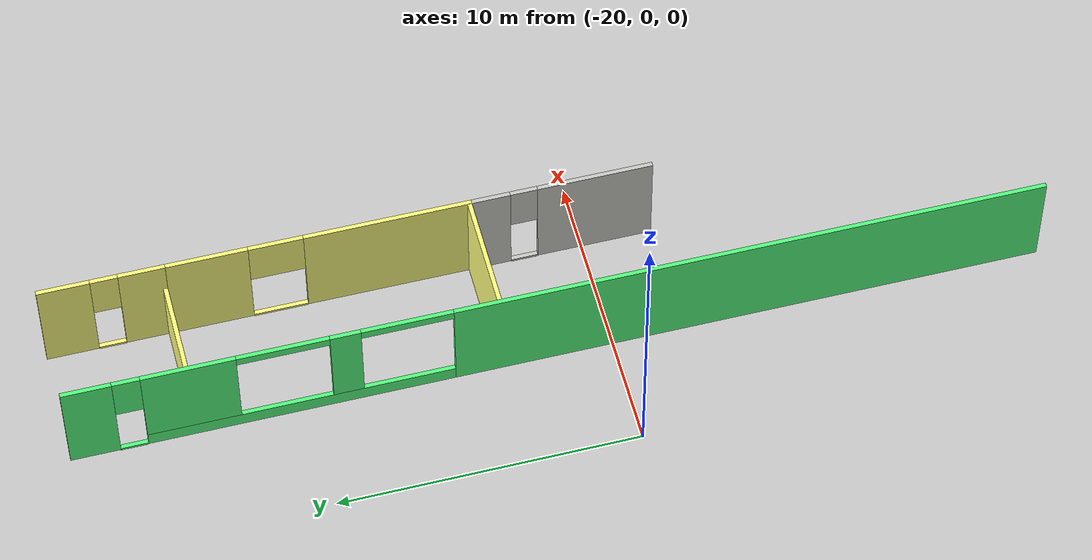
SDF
<sdf version="1.6">
 <world name="default">
  <model name="ground_plane">
   <static>1</static>
   <link name="link">
    <collision name="collision">
     <geometry><plane><normal>0 0 1</normal><size>100 100</size></plane></geometry>
     <surface><friction><ode><mu>100</mu><mu2>50</mu2></ode></friction></surface>
    </collision>
    <visual name="visual">
     <cast_shadows>0</cast_shadows>
     <geometry><plane><normal>0 0 1</normal><size>100 100</size></plane></geometry>
     <material>
      <script><uri>file://media/materials/scripts/gazebo.material</uri><name>Gazebo/Grey</name></script>
     </material>
    </visual>
   </link>
  </model>
  <model name="myfloorplan">
   <link name="Wall_36">
    <pose>-11 14 0 0 -0 1.5708</pose>
    <visual name="Wall_36_Visual_0">
     <pose>-1.30968 0 1.8 0 -0 0</pose>
     <geometry><box><size>1.53063 0.15 3.6</size></box></geometry>
     <material>
      <script><uri>file://media/materials/scripts/gazebo.material</uri><name>Gazebo/Grey</name></script>
      <ambient>1 1 0.498039 1</ambient>
     </material>
    </visual>
    <visual name="Wall_36_Visual_1">
     <pose>1.21531 0 1.8 0 -0 0</pose>
     <geometry><box><size>1.71937 0.15 3.6</size></box></geometry>
     <material>
      <script><uri>file://media/materials/scripts/gazebo.material</uri><name>Gazebo/Grey</name></script>
      <ambient>1 1 0.498039 1</ambient>
     </material>
    </visual>
    <visual name="Wall_36_Visual_2">
     <pose>-0.09437 0 0 0 -0 0</pose>
     <geometry><box><size>0.9 0.15 0.1</size></box></geometry>
     <material>
      <script><uri>file://media/materials/scripts/gazebo.material</uri><name>Gazebo/Grey</name></script>
      <ambient>1 1 0.498039 1</ambient>
     </material>
    </visual>
    <visual name="Wall_36_Visual_3">
     <pose>-0.09437 0 2.8 0 -0 0</pose>
     <geometry><box><size>0.9 0.15 1.6</size></box></geometry>
     <material>
      <script><uri>file://media/materials/scripts/gazebo.material</uri><name>Gazebo/Grey</name></script>
      <ambient>1 1 0.498039 1</ambient>
     </material>
    </visual>
    <collision name="Wall_36_Collision_0">
     <pose>-1.30968 0 1.8 0 -0 0</pose>
     <geometry><box><size>1.53063 0.15 3.6</size></box></geometry>
     <surface>
      <friction>
       <ode><mu>1</mu><mu2>1</mu2><fdir1>0 0 0</fdir1><slip1>0</slip1><slip2>0</slip2></ode>
       <torsional>
        <coefficient>1</coefficient>
        <patch_radius>0</patch_radius>
        <surface_radius>0</surface_radius>
        <use_patch_radius>1</use_patch_radius>
        <ode><slip>0</slip></ode>
       </torsional>
      </friction>
      <bounce><restitution_coefficient>0</restitution_coefficient><threshold>1e+06</threshold></bounce>
      <contact>
       <collide_without_contact>0</collide_without_contact>
       <collide_without_contact_bitmask>1</collide_without_contact_bitmask>
       <collide_bitmask>1</collide_bitmask>
       <ode>
        <soft_cfm>0</soft_cfm>
        <soft_erp>0.2</soft_erp>
        <kp>1e+13</kp>
        <kd>1</kd>
        <max_vel>0.01</max_vel>
        <min_depth>0</min_depth>
       </ode>
       <bullet>
        <split_impulse>1</split_impulse>
        <split_impulse_penetration_threshold>-0.01</split_impulse_penetration_threshold>
        <soft_cfm>0</soft_cfm>
        <soft_erp>0.2</soft_erp>
        <kp>1e+13</kp>
        <kd>1</kd>
       </bullet>
      </contact>
     </surface>
    </collision>
    <collision name="Wall_36_Collision_1">
     <pose>1.21531 0 1.8 0 -0 0</pose>
     <geometry><box><size>1.71937 0.15 3.6</size></box></geometry>
     <surface>
      <friction>
       <ode><mu>1</mu><mu2>1</mu2><fdir1>0 0 0</fdir1><slip1>0</slip1><slip2>0</slip2></ode>
       <torsional>
        <coefficient>1</coefficient>
        <patch_radius>0</patch_radius>
        <surface_radius>0</surface_radius>
        <use_patch_radius>1</use_patch_radius>
        <ode><slip>0</slip></ode>
       </torsional>
      </friction>
      <bounce><restitution_coefficient>0</restitution_coefficient><threshold>1e+06</threshold></bounce>
      <contact>
       <collide_without_contact>0</collide_without_contact>
       <collide_without_contact_bitmask>1</collide_without_contact_bitmask>
       <collide_bitmask>1</collide_bitmask>
       <ode>
        <soft_cfm>0</soft_cfm>
        <soft_erp>0.2</soft_erp>
        <kp>1e+13</kp>
        <kd>1</kd>
        <max_vel>0.01</max_vel>
        <min_depth>0</min_depth>
       </ode>
       <bullet>
        <split_impulse>1</split_impulse>
        <split_impulse_penetration_threshold>-0.01</split_impulse_penetration_threshold>
        <soft_cfm>0</soft_cfm>
        <soft_erp>0.2</soft_erp>
        <kp>1e+13</kp>
        <kd>1</kd>
       </bullet>
      </contact>
     </surface>
    </collision>
    <collision name="Wall_36_Collision_2">
     <pose>-0.09437 0 0 0 -0 0</pose>
     <geometry><box><size>0.9 0.15 0.1</size></box></geometry>
     <surface>
      <friction>
       <ode><mu>1</mu><mu2>1</mu2><fdir1>0 0 0</fdir1><slip1>0</slip1><slip2>0</slip2></ode>
       <torsional>
        <coefficient>1</coefficient>
        <patch_radius>0</patch_radius>
        <surface_radius>0</surface_radius>
        <use_patch_radius>1</use_patch_radius>
        <ode><slip>0</slip></ode>
       </torsional>
      </friction>
      <bounce><restitution_coefficient>0</restitution_coefficient><threshold>1e+06</threshold></bounce>
      <contact>
       <collide_without_contact>0</collide_without_contact>
       <collide_without_contact_bitmask>1</collide_without_contact_bitmask>
       <collide_bitmask>1</collide_bitmask>
       <ode>
        <soft_cfm>0</soft_cfm>
        <soft_erp>0.2</soft_erp>
        <kp>1e+13</kp>
        <kd>1</kd>
        <max_vel>0.01</max_vel>
        <min_depth>0</min_depth>
       </ode>
       <bullet>
        <split_impulse>1</split_impulse>
        <split_impulse_penetration_threshold>-0.01</split_impulse_penetration_threshold>
        <soft_cfm>0</soft_cfm>
        <soft_erp>0.2</soft_erp>
        <kp>1e+13</kp>
        <kd>1</kd>
       </bullet>
      </contact>
     </surface>
    </collision>
    <collision name="Wall_36_Collision_3">
     <pose>-0.09437 0 2.8 0 -0 0</pose>
     <geometry><box><size>0.9 0.15 1.6</size></box></geometry>
     <surface>
      <friction>
       <ode><mu>1</mu><mu2>1</mu2><fdir1>0 0 0</fdir1><slip1>0</slip1><slip2>0</slip2></ode>
       <torsional>
        <coefficient>1</coefficient>
        <patch_radius>0</patch_radius>
        <surface_radius>0</surface_radius>
        <use_patch_radius>1</use_patch_radius>
        <ode><slip>0</slip></ode>
       </torsional>
      </friction>
      <bounce><restitution_coefficient>0</restitution_coefficient><threshold>1e+06</threshold></bounce>
      <contact>
       <collide_without_contact>0</collide_without_contact>
       <collide_without_contact_bitmask>1</collide_without_contact_bitmask>
       <collide_bitmask>1</collide_bitmask>
       <ode>
        <soft_cfm>0</soft_cfm>
        <soft_erp>0.2</soft_erp>
        <kp>1e+13</kp>
        <kd>1</kd>
        <max_vel>0.01</max_vel>
        <min_depth>0</min_depth>
       </ode>
       <bullet>
        <split_impulse>1</split_impulse>
        <split_impulse_penetration_threshold>-0.01</split_impulse_penetration_threshold>
        <soft_cfm>0</soft_cfm>
        <soft_erp>0.2</soft_erp>
        <kp>1e+13</kp>
        <kd>1</kd>
       </bullet>
      </contact>
     </surface>
    </collision>
   </link>
   <link name="Wall_38">
    <pose>-11 7 0 0 0 -1.5708</pose>
    <visual name="Wall_38_Visual_0">
     <pose>-3.66056 0 1.8 0 -0 0</pose>
     <geometry><box><size>2.82888 0.15 3.6</size></box></geometry>
     <material>
      <script><uri>file://media/materials/scripts/gazebo.material</uri><name>Gazebo/Grey</name></script>
      <ambient>1 1 0.498039 1</ambient>
     </material>
    </visual>
    <visual name="Wall_38_Visual_1">
     <pose>2.31444 0 1.8 0 -0 0</pose>
     <geometry><box><size>5.52112 0.15 3.6</size></box></geometry>
     <material>
      <script><uri>file://media/materials/scripts/gazebo.material</uri><name>Gazebo/Grey</name></script>
      <ambient>1 1 0.498039 1</ambient>
     </material>
    </visual>
    <visual name="Wall_38_Visual_2">
     <pose>-1.34612 0 0 0 -0 0</pose>
     <geometry><box><size>1.8 0.15 0.1</size></box></geometry>
     <material>
      <script><uri>file://media/materials/scripts/gazebo.material</uri><name>Gazebo/Grey</name></script>
      <ambient>1 1 0.498039 1</ambient>
     </material>
    </visual>
    <visual name="Wall_38_Visual_3">
     <pose>-1.34612 0 2.8 0 -0 0</pose>
     <geometry><box><size>1.8 0.15 1.6</size></box></geometry>
     <material>
      <script><uri>file://media/materials/scripts/gazebo.material</uri><name>Gazebo/Grey</name></script>
      <ambient>1 1 0.498039 1</ambient>
     </material>
    </visual>
    <collision name="Wall_38_Collision_0">
     <pose>-3.66056 0 1.8 0 -0 0</pose>
     <geometry><box><size>2.82888 0.15 3.6</size></box></geometry>
     <surface>
      <friction>
       <ode><mu>1</mu><mu2>1</mu2><fdir1>0 0 0</fdir1><slip1>0</slip1><slip2>0</slip2></ode>
       <torsional>
        <coefficient>1</coefficient>
        <patch_radius>0</patch_radius>
        <surface_radius>0</surface_radius>
        <use_patch_radius>1</use_patch_radius>
        <ode><slip>0</slip></ode>
       </torsional>
      </friction>
      <bounce><restitution_coefficient>0</restitution_coefficient><threshold>1e+06</threshold></bounce>
      <contact>
       <collide_without_contact>0</collide_without_contact>
       <collide_without_contact_bitmask>1</collide_without_contact_bitmask>
       <collide_bitmask>1</collide_bitmask>
       <ode>
        <soft_cfm>0</soft_cfm>
        <soft_erp>0.2</soft_erp>
        <kp>1e+13</kp>
        <kd>1</kd>
        <max_vel>0.01</max_vel>
        <min_depth>0</min_depth>
       </ode>
       <bullet>
        <split_impulse>1</split_impulse>
        <split_impulse_penetration_threshold>-0.01</split_impulse_penetration_threshold>
        <soft_cfm>0</soft_cfm>
        <soft_erp>0.2</soft_erp>
        <kp>1e+13</kp>
        <kd>1</kd>
       </bullet>
      </contact>
     </surface>
    </collision>
    <collision name="Wall_38_Collision_1">
     <pose>2.31444 0 1.8 0 -0 0</pose>
     <geometry><box><size>5.52112 0.15 3.6</size></box></geometry>
     <surface>
      <friction>
       <ode><mu>1</mu><mu2>1</mu2><fdir1>0 0 0</fdir1><slip1>0</slip1><slip2>0</slip2></ode>
       <torsional>
        <coefficient>1</coefficient>
        <patch_radius>0</patch_radius>
        <surface_radius>0</surface_radius>
        <use_patch_radius>1</use_patch_radius>
        <ode><slip>0</slip></ode>
       </torsional>
      </friction>
      <bounce><restitution_coefficient>0</restitution_coefficient><threshold>1e+06</threshold></bounce>
      <contact>
       <collide_without_contact>0</collide_without_contact>
       <collide_without_contact_bitmask>1</collide_without_contact_bitmask>
       <collide_bitmask>1</collide_bitmask>
       <ode>
        <soft_cfm>0</soft_cfm>
        <soft_erp>0.2</soft_erp>
        <kp>1e+13</kp>
        <kd>1</kd>
        <max_vel>0.01</max_vel>
        <min_depth>0</min_depth>
       </ode>
       <bullet>
        <split_impulse>1</split_impulse>
        <split_impulse_penetration_threshold>-0.01</split_impulse_penetration_threshold>
        <soft_cfm>0</soft_cfm>
        <soft_erp>0.2</soft_erp>
        <kp>1e+13</kp>
        <kd>1</kd>
       </bullet>
      </contact>
     </surface>
    </collision>
    <collision name="Wall_38_Collision_2">
     <pose>-1.34612 0 0 0 -0 0</pose>
     <geometry><box><size>1.8 0.15 0.1</size></box></geometry>
     <surface>
      <friction>
       <ode><mu>1</mu><mu2>1</mu2><fdir1>0 0 0</fdir1><slip1>0</slip1><slip2>0</slip2></ode>
       <torsional>
        <coefficient>1</coefficient>
        <patch_radius>0</patch_radius>
        <surface_radius>0</surface_radius>
        <use_patch_radius>1</use_patch_radius>
        <ode><slip>0</slip></ode>
       </torsional>
      </friction>
      <bounce><restitution_coefficient>0</restitution_coefficient><threshold>1e+06</threshold></bounce>
      <contact>
       <collide_without_contact>0</collide_without_contact>
       <collide_without_contact_bitmask>1</collide_without_contact_bitmask>
       <collide_bitmask>1</collide_bitmask>
       <ode>
        <soft_cfm>0</soft_cfm>
        <soft_erp>0.2</soft_erp>
        <kp>1e+13</kp>
        <kd>1</kd>
        <max_vel>0.01</max_vel>
        <min_depth>0</min_depth>
       </ode>
       <bullet>
        <split_impulse>1</split_impulse>
        <split_impulse_penetration_threshold>-0.01</split_impulse_penetration_threshold>
        <soft_cfm>0</soft_cfm>
        <soft_erp>0.2</soft_erp>
        <kp>1e+13</kp>
        <kd>1</kd>
       </bullet>
      </contact>
     </surface>
    </collision>
    <collision name="Wall_38_Collision_3">
     <pose>-1.34612 0 2.8 0 -0 0</pose>
     <geometry><box><size>1.8 0.15 1.6</size></box></geometry>
     <surface>
      <friction>
       <ode><mu>1</mu><mu2>1</mu2><fdir1>0 0 0</fdir1><slip1>0</slip1><slip2>0</slip2></ode>
       <torsional>
        <coefficient>1</coefficient>
        <patch_radius>0</patch_radius>
        <surface_radius>0</surface_radius>
        <use_patch_radius>1</use_patch_radius>
        <ode><slip>0</slip></ode>
       </torsional>
      </friction>
      <bounce><restitution_coefficient>0</restitution_coefficient><threshold>1e+06</threshold></bounce>
      <contact>
       <collide_without_contact>0</collide_without_contact>
       <collide_without_contact_bitmask>1</collide_without_contact_bitmask>
       <collide_bitmask>1</collide_bitmask>
       <ode>
        <soft_cfm>0</soft_cfm>
        <soft_erp>0.2</soft_erp>
        <kp>1e+13</kp>
        <kd>1</kd>
        <max_vel>0.01</max_vel>
        <min_depth>0</min_depth>
       </ode>
       <bullet>
        <split_impulse>1</split_impulse>
        <split_impulse_penetration_threshold>-0.01</split_impulse_penetration_threshold>
        <soft_cfm>0</soft_cfm>
        <soft_erp>0.2</soft_erp>
        <kp>1e+13</kp>
        <kd>1</kd>
       </bullet>
      </contact>
     </surface>
    </collision>
   </link>
   <link name="Wall_39">
    <pose>-13 2 0 0 -0 3.14159</pose>
    <visual name="Wall_39_Visual">
     <pose>0 0 1.8 0 -0 0</pose>
     <geometry><box><size>4.15 0.15 3.6</size></box></geometry>
     <material>
      <script><uri>file://media/materials/scripts/gazebo.material</uri><name>Gazebo/Grey</name></script>
      <ambient>1 1 0.498039 1</ambient>
     </material>
    </visual>
    <collision name="Wall_39_Collision">
     <pose>0 0 1.8 0 -0 0</pose>
     <geometry><box><size>4.15 0.15 3.6</size></box></geometry>
     <surface>
      <friction>
       <ode><mu>1</mu><mu2>1</mu2><fdir1>0 0 0</fdir1><slip1>0</slip1><slip2>0</slip2></ode>
       <torsional>
        <coefficient>1</coefficient>
        <patch_radius>0</patch_radius>
        <surface_radius>0</surface_radius>
        <use_patch_radius>1</use_patch_radius>
        <ode><slip>0</slip></ode>
       </torsional>
      </friction>
      <bounce><restitution_coefficient>0</restitution_coefficient><threshold>1e+06</threshold></bounce>
      <contact>
       <collide_without_contact>0</collide_without_contact>
       <collide_without_contact_bitmask>1</collide_without_contact_bitmask>
       <collide_bitmask>1</collide_bitmask>
       <ode>
        <soft_cfm>0</soft_cfm>
        <soft_erp>0.2</soft_erp>
        <kp>1e+13</kp>
        <kd>1</kd>
        <max_vel>0.01</max_vel>
        <min_depth>0</min_depth>
       </ode>
       <bullet>
        <split_impulse>1</split_impulse>
        <split_impulse_penetration_threshold>-0.01</split_impulse_penetration_threshold>
        <soft_cfm>0</soft_cfm>
        <soft_erp>0.2</soft_erp>
        <kp>1e+13</kp>
        <kd>1</kd>
       </bullet>
      </contact>
     </surface>
    </collision>
   </link>
   <link name="Wall_41">
    <pose>-11 -0.999999 0 0 0 -1.5708</pose>
    <visual name="Wall_41_Visual_0">
     <pose>-2.36537 0 1.8 0 -0 0</pose>
     <geometry><box><size>1.41927 0.15 3.6</size></box></geometry>
     <material>
      <script><uri>file://media/materials/scripts/gazebo.material</uri><name>Gazebo/CeilingTiled</name></script>
      <ambient>1 1 0.498039 1</ambient>
     </material>
    </visual>
    <visual name="Wall_41_Visual_1">
     <pose>1.15963 0 1.8 0 -0 0</pose>
     <geometry><box><size>3.83073 0.15 3.6</size></box></geometry>
     <material>
      <script><uri>file://media/materials/scripts/gazebo.material</uri><name>Gazebo/CeilingTiled</name></script>
      <ambient>1 1 0.498039 1</ambient>
     </material>
    </visual>
    <visual name="Wall_41_Visual_2">
     <pose>-1.20573 0 0 0 -0 0</pose>
     <geometry><box><size>0.9 0.15 0.1</size></box></geometry>
     <material>
      <script><uri>file://media/materials/scripts/gazebo.material</uri><name>Gazebo/CeilingTiled</name></script>
      <ambient>1 1 0.498039 1</ambient>
     </material>
    </visual>
    <visual name="Wall_41_Visual_3">
     <pose>-1.20573 0 2.8 0 -0 0</pose>
     <geometry><box><size>0.9 0.15 1.6</size></box></geometry>
     <material>
      <script><uri>file://media/materials/scripts/gazebo.material</uri><name>Gazebo/CeilingTiled</name></script>
      <ambient>1 1 0.498039 1</ambient>
     </material>
    </visual>
    <collision name="Wall_41_Collision_0">
     <pose>-2.36537 0 1.8 0 -0 0</pose>
     <geometry><box><size>1.41927 0.15 3.6</size></box></geometry>
     <surface>
      <friction>
       <ode><mu>1</mu><mu2>1</mu2><fdir1>0 0 0</fdir1><slip1>0</slip1><slip2>0</slip2></ode>
       <torsional>
        <coefficient>1</coefficient>
        <patch_radius>0</patch_radius>
        <surface_radius>0</surface_radius>
        <use_patch_radius>1</use_patch_radius>
        <ode><slip>0</slip></ode>
       </torsional>
      </friction>
      <bounce><restitution_coefficient>0</restitution_coefficient><threshold>1e+06</threshold></bounce>
      <contact>
       <collide_without_contact>0</collide_without_contact>
       <collide_without_contact_bitmask>1</collide_without_contact_bitmask>
       <collide_bitmask>1</collide_bitmask>
       <ode>
        <soft_cfm>0</soft_cfm>
        <soft_erp>0.2</soft_erp>
        <kp>1e+13</kp>
        <kd>1</kd>
        <max_vel>0.01</max_vel>
        <min_depth>0</min_depth>
       </ode>
       <bullet>
        <split_impulse>1</split_impulse>
        <split_impulse_penetration_threshold>-0.01</split_impulse_penetration_threshold>
        <soft_cfm>0</soft_cfm>
        <soft_erp>0.2</soft_erp>
        <kp>1e+13</kp>
        <kd>1</kd>
       </bullet>
      </contact>
     </surface>
    </collision>
    <collision name="Wall_41_Collision_1">
     <pose>1.15963 0 1.8 0 -0 0</pose>
     <geometry><box><size>3.83073 0.15 3.6</size></box></geometry>
     <surface>
      <friction>
       <ode><mu>1</mu><mu2>1</mu2><fdir1>0 0 0</fdir1><slip1>0</slip1><slip2>0</slip2></ode>
       <torsional>
        <coefficient>1</coefficient>
        <patch_radius>0</patch_radius>
        <surface_radius>0</surface_radius>
        <use_patch_radius>1</use_patch_radius>
        <ode><slip>0</slip></ode>
       </torsional>
      </friction>
      <bounce><restitution_coefficient>0</restitution_coefficient><threshold>1e+06</threshold></bounce>
      <contact>
       <collide_without_contact>0</collide_without_contact>
       <collide_without_contact_bitmask>1</collide_without_contact_bitmask>
       <collide_bitmask>1</collide_bitmask>
       <ode>
        <soft_cfm>0</soft_cfm>
        <soft_erp>0.2</soft_erp>
        <kp>1e+13</kp>
        <kd>1</kd>
        <max_vel>0.01</max_vel>
        <min_depth>0</min_depth>
       </ode>
       <bullet>
        <split_impulse>1</split_impulse>
        <split_impulse_penetration_threshold>-0.01</split_impulse_penetration_threshold>
        <soft_cfm>0</soft_cfm>
        <soft_erp>0.2</soft_erp>
        <kp>1e+13</kp>
        <kd>1</kd>
       </bullet>
      </contact>
     </surface>
    </collision>
    <collision name="Wall_41_Collision_2">
     <pose>-1.20573 0 0 0 -0 0</pose>
     <geometry><box><size>0.9 0.15 0.1</size></box></geometry>
     <surface>
      <friction>
       <ode><mu>1</mu><mu2>1</mu2><fdir1>0 0 0</fdir1><slip1>0</slip1><slip2>0</slip2></ode>
       <torsional>
        <coefficient>1</coefficient>
        <patch_radius>0</patch_radius>
        <surface_radius>0</surface_radius>
        <use_patch_radius>1</use_patch_radius>
        <ode><slip>0</slip></ode>
       </torsional>
      </friction>
      <bounce><restitution_coefficient>0</restitution_coefficient><threshold>1e+06</threshold></bounce>
      <contact>
       <collide_without_contact>0</collide_without_contact>
       <collide_without_contact_bitmask>1</collide_without_contact_bitmask>
       <collide_bitmask>1</collide_bitmask>
       <ode>
        <soft_cfm>0</soft_cfm>
        <soft_erp>0.2</soft_erp>
        <kp>1e+13</kp>
        <kd>1</kd>
        <max_vel>0.01</max_vel>
        <min_depth>0</min_depth>
       </ode>
       <bullet>
        <split_impulse>1</split_impulse>
        <split_impulse_penetration_threshold>-0.01</split_impulse_penetration_threshold>
        <soft_cfm>0</soft_cfm>
        <soft_erp>0.2</soft_erp>
        <kp>1e+13</kp>
        <kd>1</kd>
       </bullet>
      </contact>
     </surface>
    </collision>
    <collision name="Wall_41_Collision_3">
     <pose>-1.20573 0 2.8 0 -0 0</pose>
     <geometry><box><size>0.9 0.15 1.6</size></box></geometry>
     <surface>
      <friction>
       <ode><mu>1</mu><mu2>1</mu2><fdir1>0 0 0</fdir1><slip1>0</slip1><slip2>0</slip2></ode>
       <torsional>
        <coefficient>1</coefficient>
        <patch_radius>0</patch_radius>
        <surface_radius>0</surface_radius>
        <use_patch_radius>1</use_patch_radius>
        <ode><slip>0</slip></ode>
       </torsional>
      </friction>
      <bounce><restitution_coefficient>0</restitution_coefficient><threshold>1e+06</threshold></bounce>
      <contact>
       <collide_without_contact>0</collide_without_contact>
       <collide_without_contact_bitmask>1</collide_without_contact_bitmask>
       <collide_bitmask>1</collide_bitmask>
       <ode>
        <soft_cfm>0</soft_cfm>
        <soft_erp>0.2</soft_erp>
        <kp>1e+13</kp>
        <kd>1</kd>
        <max_vel>0.01</max_vel>
        <min_depth>0</min_depth>
       </ode>
       <bullet>
        <split_impulse>1</split_impulse>
        <split_impulse_penetration_threshold>-0.01</split_impulse_penetration_threshold>
        <soft_cfm>0</soft_cfm>
        <soft_erp>0.2</soft_erp>
        <kp>1e+13</kp>
        <kd>1</kd>
       </bullet>
      </contact>
     </surface>
    </collision>
   </link>
   <link name="Wall_7">
    <pose>-15 1e-06 0 0 -0 1.5708</pose>
    <visual name="Wall_7_Visual_0">
     <pose>-6.2875 0 1.8 0 -0 0</pose>
     <geometry><box><size>19.575 0.15 3.6</size></box></geometry>
     <material>
      <script><uri>file://media/materials/scripts/gazebo.material</uri><name>Gazebo/Grey</name></script>
      <ambient>0.333333 1 0.498039 1</ambient>
     </material>
    </visual>
    <visual name="Wall_7_Visual_1">
     <pose>15.2625 0 1.8 0 -0 0</pose>
     <geometry><box><size>1.625 0.15 3.6</size></box></geometry>
     <material>
      <script><uri>file://media/materials/scripts/gazebo.material</uri><name>Gazebo/Grey</name></script>
      <ambient>0.333333 1 0.498039 1</ambient>
     </material>
    </visual>
    <visual name="Wall_7_Visual_2">
     <pose>8.525 0 0.25 0 -0 0</pose>
     <geometry><box><size>10.05 0.15 0.5</size></box></geometry>
     <material>
      <script><uri>file://media/materials/scripts/gazebo.material</uri><name>Gazebo/Grey</name></script>
      <ambient>0.333333 1 0.498039 1</ambient>
     </material>
    </visual>
    <visual name="Wall_7_Visual_3">
     <pose>14 0 0 0 -0 0</pose>
     <geometry><box><size>0.9 0.15 0.1</size></box></geometry>
     <material>
      <script><uri>file://media/materials/scripts/gazebo.material</uri><name>Gazebo/Grey</name></script>
      <ambient>0.333333 1 0.498039 1</ambient>
     </material>
    </visual>
    <visual name="Wall_7_Visual_4">
     <pose>7 0 2.05 0 -0 0</pose>
     <geometry><box><size>1 0.15 3.1</size></box></geometry>
     <material>
      <script><uri>file://media/materials/scripts/gazebo.material</uri><name>Gazebo/Grey</name></script>
      <ambient>0.333333 1 0.498039 1</ambient>
     </material>
    </visual>
    <visual name="Wall_7_Visual_5">
     <pose>12.025 0 2.05 0 -0 0</pose>
     <geometry><box><size>3.05 0.15 3.1</size></box></geometry>
     <material>
      <script><uri>file://media/materials/scripts/gazebo.material</uri><name>Gazebo/Grey</name></script>
      <ambient>0.333333 1 0.498039 1</ambient>
     </material>
    </visual>
    <visual name="Wall_7_Visual_6">
     <pose>14 0 2.8 0 -0 0</pose>
     <geometry><box><size>0.9 0.15 1.6</size></box></geometry>
     <material>
      <script><uri>file://media/materials/scripts/gazebo.material</uri><name>Gazebo/Grey</name></script>
      <ambient>0.333333 1 0.498039 1</ambient>
     </material>
    </visual>
    <visual name="Wall_7_Visual_7">
     <pose>5 0 3.45 0 -0 0</pose>
     <geometry><box><size>3 0.15 0.3</size></box></geometry>
     <material>
      <script><uri>file://media/materials/scripts/gazebo.material</uri><name>Gazebo/Grey</name></script>
      <ambient>0.333333 1 0.498039 1</ambient>
     </material>
    </visual>
    <visual name="Wall_7_Visual_8">
     <pose>9 0 3.45 0 -0 0</pose>
     <geometry><box><size>3 0.15 0.3</size></box></geometry>
     <material>
      <script><uri>file://media/materials/scripts/gazebo.material</uri><name>Gazebo/Grey</name></script>
      <ambient>0.333333 1 0.498039 1</ambient>
     </material>
    </visual>
    <collision name="Wall_7_Collision_0">
     <pose>-6.2875 0 1.8 0 -0 0</pose>
     <geometry><box><size>19.575 0.15 3.6</size></box></geometry>
     <surface>
      <friction>
       <ode><mu>1</mu><mu2>1</mu2><fdir1>0 0 0</fdir1><slip1>0</slip1><slip2>0</slip2></ode>
       <torsional>
        <coefficient>1</coefficient>
        <patch_radius>0</patch_radius>
        <surface_radius>0</surface_radius>
        <use_patch_radius>1</use_patch_radius>
        <ode><slip>0</slip></ode>
       </torsional>
      </friction>
      <bounce><restitution_coefficient>0</restitution_coefficient><threshold>1e+06</threshold></bounce>
      <contact>
       <collide_without_contact>0</collide_without_contact>
       <collide_without_contact_bitmask>1</collide_without_contact_bitmask>
       <collide_bitmask>1</collide_bitmask>
       <ode>
        <soft_cfm>0</soft_cfm>
        <soft_erp>0.2</soft_erp>
        <kp>1e+13</kp>
        <kd>1</kd>
        <max_vel>0.01</max_vel>
        <min_depth>0</min_depth>
       </ode>
       <bullet>
        <split_impulse>1</split_impulse>
        <split_impulse_penetration_threshold>-0.01</split_impulse_penetration_threshold>
        <soft_cfm>0</soft_cfm>
        <soft_erp>0.2</soft_erp>
        <kp>1e+13</kp>
        <kd>1</kd>
       </bullet>
      </contact>
     </surface>
    </collision>
    <collision name="Wall_7_Collision_1">
     <pose>15.2625 0 1.8 0 -0 0</pose>
     <geometry><box><size>1.625 0.15 3.6</size></box></geometry>
     <surface>
      <friction>
       <ode><mu>1</mu><mu2>1</mu2><fdir1>0 0 0</fdir1><slip1>0</slip1><slip2>0</slip2></ode>
       <torsional>
        <coefficient>1</coefficient>
        <patch_radius>0</patch_radius>
        <surface_radius>0</surface_radius>
        <use_patch_radius>1</use_patch_radius>
        <ode><slip>0</slip></ode>
       </torsional>
      </friction>
      <bounce><restitution_coefficient>0</restitution_coefficient><threshold>1e+06</threshold></bounce>
      <contact>
       <collide_without_contact>0</collide_without_contact>
       <collide_without_contact_bitmask>1</collide_without_contact_bitmask>
       <collide_bitmask>1</collide_bitmask>
       <ode>
        <soft_cfm>0</soft_cfm>
        <soft_erp>0.2</soft_erp>
        <kp>1e+13</kp>
        <kd>1</kd>
        <max_vel>0.01</max_vel>
        <min_depth>0</min_depth>
       </ode>
       <bullet>
        <split_impulse>1</split_impulse>
        <split_impulse_penetration_threshold>-0.01</split_impulse_penetration_threshold>
        <soft_cfm>0</soft_cfm>
        <soft_erp>0.2</soft_erp>
        <kp>1e+13</kp>
        <kd>1</kd>
       </bullet>
      </contact>
     </surface>
    </collision>
    <collision name="Wall_7_Collision_2">
     <pose>8.525 0 0.25 0 -0 0</pose>
     <geometry><box><size>10.05 0.15 0.5</size></box></geometry>
     <surface>
      <friction>
       <ode><mu>1</mu><mu2>1</mu2><fdir1>0 0 0</fdir1><slip1>0</slip1><slip2>0</slip2></ode>
       <torsional>
        <coefficient>1</coefficient>
        <patch_radius>0</patch_radius>
        <surface_radius>0</surface_radius>
        <use_patch_radius>1</use_patch_radius>
        <ode><slip>0</slip></ode>
       </torsional>
      </friction>
      <bounce><restitution_coefficient>0</restitution_coefficient><threshold>1e+06</threshold></bounce>
      <contact>
       <collide_without_contact>0</collide_without_contact>
       <collide_without_contact_bitmask>1</collide_without_contact_bitmask>
       <collide_bitmask>1</collide_bitmask>
       <ode>
        <soft_cfm>0</soft_cfm>
        <soft_erp>0.2</soft_erp>
        <kp>1e+13</kp>
        <kd>1</kd>
        <max_vel>0.01</max_vel>
        <min_depth>0</min_depth>
       </ode>
       <bullet>
        <split_impulse>1</split_impulse>
        <split_impulse_penetration_threshold>-0.01</split_impulse_penetration_threshold>
        <soft_cfm>0</soft_cfm>
        <soft_erp>0.2</soft_erp>
        <kp>1e+13</kp>
        <kd>1</kd>
       </bullet>
      </contact>
     </surface>
    </collision>
    <collision name="Wall_7_Collision_3">
     <pose>14 0 0 0 -0 0</pose>
     <geometry><box><size>0.9 0.15 0.1</size></box></geometry>
     <surface>
      <friction>
       <ode><mu>1</mu><mu2>1</mu2><fdir1>0 0 0</fdir1><slip1>0</slip1><slip2>0</slip2></ode>
       <torsional>
        <coefficient>1</coefficient>
        <patch_radius>0</patch_radius>
        <surface_radius>0</surface_radius>
        <use_patch_radius>1</use_patch_radius>
        <ode><slip>0</slip></ode>
       </torsional>
      </friction>
      <bounce><restitution_coefficient>0</restitution_coefficient><threshold>1e+06</threshold></bounce>
      <contact>
       <collide_without_contact>0</collide_without_contact>
       <collide_without_contact_bitmask>1</collide_without_contact_bitmask>
       <collide_bitmask>1</collide_bitmask>
       <ode>
        <soft_cfm>0</soft_cfm>
        <soft_erp>0.2</soft_erp>
        <kp>1e+13</kp>
        <kd>1</kd>
        <max_vel>0.01</max_vel>
        <min_depth>0</min_depth>
       </ode>
       <bullet>
        <split_impulse>1</split_impulse>
        <split_impulse_penetration_threshold>-0.01</split_impulse_penetration_threshold>
        <soft_cfm>0</soft_cfm>
        <soft_erp>0.2</soft_erp>
        <kp>1e+13</kp>
        <kd>1</kd>
       </bullet>
      </contact>
     </surface>
    </collision>
    <collision name="Wall_7_Collision_4">
     <pose>7 0 2.05 0 -0 0</pose>
     <geometry><box><size>1 0.15 3.1</size></box></geometry>
     <surface>
      <friction>
       <ode><mu>1</mu><mu2>1</mu2><fdir1>0 0 0</fdir1><slip1>0</slip1><slip2>0</slip2></ode>
       <torsional>
        <coefficient>1</coefficient>
        <patch_radius>0</patch_radius>
        <surface_radius>0</surface_radius>
        <use_patch_radius>1</use_patch_radius>
        <ode><slip>0</slip></ode>
       </torsional>
      </friction>
      <bounce><restitution_coefficient>0</restitution_coefficient><threshold>1e+06</threshold></bounce>
      <contact>
       <collide_without_contact>0</collide_without_contact>
       <collide_without_contact_bitmask>1</collide_without_contact_bitmask>
       <collide_bitmask>1</collide_bitmask>
       <ode>
        <soft_cfm>0</soft_cfm>
        <soft_erp>0.2</soft_erp>
        <kp>1e+13</kp>
        <kd>1</kd>
        <max_vel>0.01</max_vel>
        <min_depth>0</min_depth>
       </ode>
       <bullet>
        <split_impulse>1</split_impulse>
        <split_impulse_penetration_threshold>-0.01</split_impulse_penetration_threshold>
        <soft_cfm>0</soft_cfm>
        <soft_erp>0.2</soft_erp>
        <kp>1e+13</kp>
        <kd>1</kd>
       </bullet>
      </contact>
     </surface>
    </collision>
    <collision name="Wall_7_Collision_5">
     <pose>12.025 0 2.05 0 -0 0</pose>
     <geometry><box><size>3.05 0.15 3.1</size></box></geometry>
     <surface>
      <friction>
       <ode><mu>1</mu><mu2>1</mu2><fdir1>0 0 0</fdir1><slip1>0</slip1><slip2>0</slip2></ode>
       <torsional>
        <coefficient>1</coefficient>
        <patch_radius>0</patch_radius>
        <surface_radius>0</surface_radius>
        <use_patch_radius>1</use_patch_radius>
        <ode><slip>0</slip></ode>
       </torsional>
      </friction>
      <bounce><restitution_coefficient>0</restitution_coefficient><threshold>1e+06</threshold></bounce>
      <contact>
       <collide_without_contact>0</collide_without_contact>
       <collide_without_contact_bitmask>1</collide_without_contact_bitmask>
       <collide_bitmask>1</collide_bitmask>
       <ode>
        <soft_cfm>0</soft_cfm>
        <soft_erp>0.2</soft_erp>
        <kp>1e+13</kp>
        <kd>1</kd>
        <max_vel>0.01</max_vel>
        <min_depth>0</min_depth>
       </ode>
       <bullet>
        <split_impulse>1</split_impulse>
        <split_impulse_penetration_threshold>-0.01</split_impulse_penetration_threshold>
        <soft_cfm>0</soft_cfm>
        <soft_erp>0.2</soft_erp>
        <kp>1e+13</kp>
        <kd>1</kd>
       </bullet>
      </contact>
     </surface>
    </collision>
    <collision name="Wall_7_Collision_6">
     <pose>14 0 2.8 0 -0 0</pose>
     <geometry><box><size>0.9 0.15 1.6</size></box></geometry>
     <surface>
      <friction>
       <ode><mu>1</mu><mu2>1</mu2><fdir1>0 0 0</fdir1><slip1>0</slip1><slip2>0</slip2></ode>
       <torsional>
        <coefficient>1</coefficient>
        <patch_radius>0</patch_radius>
        <surface_radius>0</surface_radius>
        <use_patch_radius>1</use_patch_radius>
        <ode><slip>0</slip></ode>
       </torsional>
      </friction>
      <bounce><restitution_coefficient>0</restitution_coefficient><threshold>1e+06</threshold></bounce>
      <contact>
       <collide_without_contact>0</collide_without_contact>
       <collide_without_contact_bitmask>1</collide_without_contact_bitmask>
       <collide_bitmask>1</collide_bitmask>
       <ode>
        <soft_cfm>0</soft_cfm>
        <soft_erp>0.2</soft_erp>
        <kp>1e+13</kp>
        <kd>1</kd>
        <max_vel>0.01</max_vel>
        <min_depth>0</min_depth>
       </ode>
       <bullet>
        <split_impulse>1</split_impulse>
        <split_impulse_penetration_threshold>-0.01</split_impulse_penetration_threshold>
        <soft_cfm>0</soft_cfm>
        <soft_erp>0.2</soft_erp>
        <kp>1e+13</kp>
        <kd>1</kd>
       </bullet>
      </contact>
     </surface>
    </collision>
    <collision name="Wall_7_Collision_7">
     <pose>5 0 3.45 0 -0 0</pose>
     <geometry><box><size>3 0.15 0.3</size></box></geometry>
     <surface>
      <friction>
       <ode><mu>1</mu><mu2>1</mu2><fdir1>0 0 0</fdir1><slip1>0</slip1><slip2>0</slip2></ode>
       <torsional>
        <coefficient>1</coefficient>
        <patch_radius>0</patch_radius>
        <surface_radius>0</surface_radius>
        <use_patch_radius>1</use_patch_radius>
        <ode><slip>0</slip></ode>
       </torsional>
      </friction>
      <bounce><restitution_coefficient>0</restitution_coefficient><threshold>1e+06</threshold></bounce>
      <contact>
       <collide_without_contact>0</collide_without_contact>
       <collide_without_contact_bitmask>1</collide_without_contact_bitmask>
       <collide_bitmask>1</collide_bitmask>
       <ode>
        <soft_cfm>0</soft_cfm>
        <soft_erp>0.2</soft_erp>
        <kp>1e+13</kp>
        <kd>1</kd>
        <max_vel>0.01</max_vel>
        <min_depth>0</min_depth>
       </ode>
       <bullet>
        <split_impulse>1</split_impulse>
        <split_impulse_penetration_threshold>-0.01</split_impulse_penetration_threshold>
        <soft_cfm>0</soft_cfm>
        <soft_erp>0.2</soft_erp>
        <kp>1e+13</kp>
        <kd>1</kd>
       </bullet>
      </contact>
     </surface>
    </collision>
    <collision name="Wall_7_Collision_8">
     <pose>9 0 3.45 0 -0 0</pose>
     <geometry><box><size>3 0.15 0.3</size></box></geometry>
     <surface>
      <friction>
       <ode><mu>1</mu><mu2>1</mu2><fdir1>0 0 0</fdir1><slip1>0</slip1><slip2>0</slip2></ode>
       <torsional>
        <coefficient>1</coefficient>
        <patch_radius>0</patch_radius>
        <surface_radius>0</surface_radius>
        <use_patch_radius>1</use_patch_radius>
        <ode><slip>0</slip></ode>
       </torsional>
      </friction>
      <bounce><restitution_coefficient>0</restitution_coefficient><threshold>1e+06</threshold></bounce>
      <contact>
       <collide_without_contact>0</collide_without_contact>
       <collide_without_contact_bitmask>1</collide_without_contact_bitmask>
       <collide_bitmask>1</collide_bitmask>
       <ode>
        <soft_cfm>0</soft_cfm>
        <soft_erp>0.2</soft_erp>
        <kp>1e+13</kp>
        <kd>1</kd>
        <max_vel>0.01</max_vel>
        <min_depth>0</min_depth>
       </ode>
       <bullet>
        <split_impulse>1</split_impulse>
        <split_impulse_penetration_threshold>-0.01</split_impulse_penetration_threshold>
        <soft_cfm>0</soft_cfm>
        <soft_erp>0.2</soft_erp>
        <kp>1e+13</kp>
        <kd>1</kd>
       </bullet>
      </contact>
     </surface>
    </collision>
   </link>
   <link name="Wall_9">
    <pose>-13 12 0 0 -0 0</pose>
    <visual name="Wall_9_Visual">
     <pose>0 0 1.25 0 -0 0</pose>
     <geometry><box><size>4.15 0.15 2.5</size></box></geometry>
     <material>
      <script><uri>file://media/materials/scripts/gazebo.material</uri><name>Gazebo/Grey</name></script>
      <ambient>1 1 0.498039 1</ambient>
     </material>
    </visual>
    <collision name="Wall_9_Collision">
     <pose>0 0 1.25 0 -0 0</pose>
     <geometry><box><size>4.15 0.15 2.5</size></box></geometry>
     <surface>
      <friction>
       <ode><mu>1</mu><mu2>1</mu2><fdir1>0 0 0</fdir1><slip1>0</slip1><slip2>0</slip2></ode>
       <torsional>
        <coefficient>1</coefficient>
        <patch_radius>0</patch_radius>
        <surface_radius>0</surface_radius>
        <use_patch_radius>1</use_patch_radius>
        <ode><slip>0</slip></ode>
       </torsional>
      </friction>
      <bounce><restitution_coefficient>0</restitution_coefficient><threshold>1e+06</threshold></bounce>
      <contact>
       <collide_without_contact>0</collide_without_contact>
       <collide_without_contact_bitmask>1</collide_without_contact_bitmask>
       <collide_bitmask>1</collide_bitmask>
       <ode>
        <soft_cfm>0</soft_cfm>
        <soft_erp>0.2</soft_erp>
        <kp>1e+13</kp>
        <kd>1</kd>
        <max_vel>0.01</max_vel>
        <min_depth>0</min_depth>
       </ode>
       <bullet>
        <split_impulse>1</split_impulse>
        <split_impulse_penetration_threshold>-0.01</split_impulse_penetration_threshold>
        <soft_cfm>0</soft_cfm>
        <soft_erp>0.2</soft_erp>
        <kp>1e+13</kp>
        <kd>1</kd>
       </bullet>
      </contact>
     </surface>
    </collision>
   </link>
   <static>1</static>
   <pose>-1.20922 1.7115 0 0 -0 0</pose>
  </model>
 </world>
</sdf>
